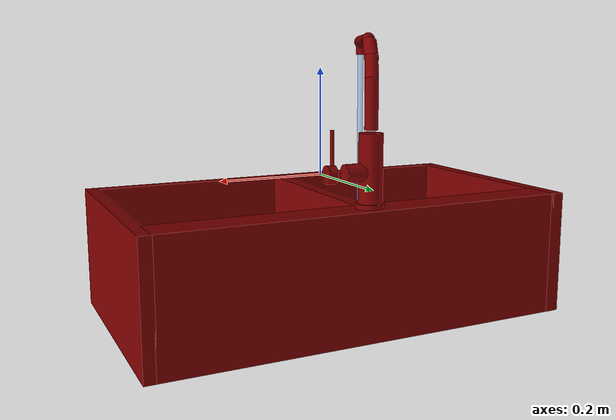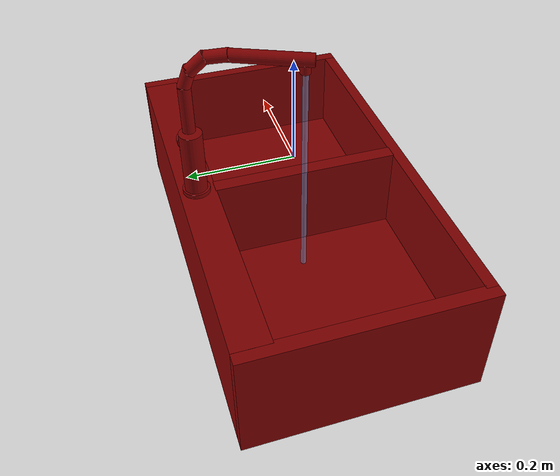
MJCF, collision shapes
<?xml version='1.0' encoding='UTF-8'?>
<mujoco model="model">
  <option timestep="0.002" gravity="0.0 0.0 -9.81"/>
  <compiler angle="radian"/>
  <asset>
    <mesh file="visuals/handle.obj" name="handle_vis"/>
    <mesh file="visuals/Body001.obj" name="Body001_vis"/>
    <mesh file="visuals/spout.obj" name="spout_vis"/>
    <texture file="visuals/T_BC001.png" name="Body001_material" type="2d"/>
    <material name="Body001_material" rgba="1 1 1 1.0" texture="Body001_material" shininess="0.1" specular="1"/>
    <texture file="visuals/T_BC001.png" name="handle_material" type="2d"/>
    <material name="handle_material" rgba="1 1 1 1.0" texture="handle_material" shininess="0.1" specular="2"/>
    <texture file="visuals/T_BC001.png" name="spout_material" type="2d"/>
    <material name="spout_material" rgba="1 1 1 1.0" texture="spout_material" shininess="0.1" specular="2"/>
  </asset>
  <default>
    <default class="visual">
      <geom conaffinity="0" contype="0" group="1" type="mesh"/>
    </default>
    <default class="collision">
      <geom group="0" rgba="0.5 0 0 0.5" solimp="0.998 0.998 0.001" solref="0.001 2"/>
    </default>
    <default class="spawn">
      <geom group="0" rgba="1 1 1 0.5" contype="0" conaffinity="0"/>
      <site group="0" rgba="1 1 1 0.5"/>
    </default>
    <default class="region">
      <geom group="1" conaffinity="0" contype="0" rgba="0 1 0 0"/>
    </default>
  </default>
  <worldbody>
    <body>
      <body name="object">
        <geom mesh="Body001_vis" type="mesh" solimp="0.998 0.998 0.001" solref="0.001 1" friction="0.95 0.3 0.1" class="visual" material="Body001_material"/>
        <geom class="collision" type="box" pos="-0.38680545 -0.00000005 -0.14681930" size="0.013351384550333023 0.2195151299238205 0.11469420790672302" quat="1.0 0.0 0.0 0.0"/>
        <geom class="collision" type="box" pos="0.38909247 0.00004033 -0.14680538" size="0.011063648387789726 0.21947473287582397 0.11468028277158737" quat="1.0 0.0 0.0 0.0"/>
        <geom class="collision" type="box" pos="0.00054166 -0.20857762 -0.14605840" size="0.3795216679573059 0.010937578044831753 0.11393329501152039" quat="1.0 0.0 0.0 0.0"/>
        <geom class="collision" type="box" pos="0.00054166 0.18599495 -0.14671559" size="0.3795216679573059 0.033520132303237915 0.11469586193561554" quat="1.0 0.0 0.0 0.0"/>
        <geom class="collision" type="box" pos="-0.00059625 -0.02230611 -0.14547301" size="0.01353565976023674 0.17649586498737335 0.1142890602350235" quat="1.0 0.0 0.0 0.0"/>
        <geom class="collision" type="box" pos="-0.19621837 -0.02230611 -0.22904832" size="0.18248188495635986 0.17649586498737335 0.031410619616508484" quat="1.0 0.0 0.0 0.0"/>
        <geom class="collision" type="box" pos="0.19532824 -0.02230611 -0.22939133" size="0.18313905596733093 0.17649586498737335 0.03231377154588699" quat="1.0 0.0 0.0 0.0"/>
        <geom class="collision" type="cylinder" pos="-0.00225388 0.18713000 0.03506240" size="0.02084951102733612 0.060565002262592316" quat="1.0 0.0 0.0 0.0"/>
        <geom class="collision" type="cylinder" pos="-0.00201509 0.18689154 -0.02721003" size="0.02525591477751732 0.00408189045265317" quat="1.0 0.0 0.0 0.0"/>
        <geom class="collision" type="cylinder" pos="0.02818751 0.18738802 0.03012674" size="0.015646332874894142 0.019175328314304352" quat="0.7071068286895752 -0.0 0.7071067690849304 0.0"/>
        <body name="handle">
          <joint axis="1.0 0.0 0.0" pos="0.06968138 0.18741855 0.03066257" limited="true" name="handle_temp_joint" type="hinge" range="-0.7853981633974483 0.7853981633974483" damping="0.5" frictionloss="1" armature="2"/>
          <joint axis="0.0 1.0 0.0" pos="0.06968138 0.18741855 0.03066257" limited="true" name="handle_joint" type="hinge" range="0 0.5" damping="0.5" frictionloss="1" armature="2"/>
          <geom mesh="handle_vis" type="mesh" solimp="0.998 0.998 0.001" solref="0.001 1" friction="0.95 0.3 0.1" class="visual" material="handle_material"/>
          <geom class="collision" type="cylinder" pos="0.07344403 0.18738802 0.03012674" size="0.015646332874894142 0.007456898223608732" quat="0.7071068286895752 -0.0 0.7071067690849304 0.0"/>
          <geom name="handle_main" class="collision" type="cylinder" pos="0.07032917 0.18725046 0.07360532" size="0.003538890741765499 0.02964147925376892" quat="7.549790126404332e-08 0.0 1.0 0.0"/>
        </body>
        <body name="spout">
          <joint axis="0.0 0.0 1.0" pos="-0.00196393 0.18813546 0.17508620" limited="true" name="spout_joint" range="-0.5235987755982988 1.5707963267948966" type="hinge" damping="10"/>
          <site type="cylinder" rgba="0.5 0.75 1 0.5" size="0.005098273511976004 0.22427064180374146" pos="-0.08104806 0.00656461 0.00922041" name="water"/>
          <geom mesh="spout_vis" type="mesh" solimp="0.998 0.998 0.001" solref="0.001 1" friction="0.95 0.3 0.1" class="visual" material="spout_material"/>
          <geom class="collision" type="cylinder" pos="-0.00192987 0.18840389 0.14474963" size="0.011443710885941982 0.04392549258470535" quat="1.0 0.0 0.0 0.0"/>
          <geom class="collision" type="cylinder" pos="-0.00428795 0.18275264 0.20397591" size="0.011443709954619408 0.020029915496706963" quat="0.9840264320373535 0.1626436710357666 -0.06819719076156616 -0.024252736940979958"/>
          <geom class="collision" type="cylinder" pos="-0.01254344 0.16485700 0.23091529" size="0.011834868229925632 0.020714567974209785" quat="0.8972313404083252 0.38146403431892395 -0.05726788192987442 -0.21489889919757843"/>
          <geom class="collision" type="cylinder" pos="-0.02623833 0.13427152 0.24646887" size="0.011443709023296833 0.020029917359352112" quat="0.7550481557846069 0.6142236590385437 -0.14477390050888062 -0.17796654999256134"/>
          <geom class="collision" type="cylinder" pos="-0.06014432 0.05641563 0.24821715" size="0.011443709954619408 0.06917614489793777" quat="0.6892174482345581 0.6950477957725525 -0.144886314868927 -0.14455394446849823" name="spout_main"/>
          <geom class="collision" type="cylinder" pos="-0.08118154 0.00717940 0.23222953" size="0.008876348845660686 0.008142790757119656" quat="1.0 0.0 0.0 0.0"/>
        </body>
        <geom class="region" name="reg_basin_left" type="box" pos="-0.19452467 -0.022255129999999998 -0.112075365" size="0.17625912 0.17038829 0.080182565"/>
        <geom class="region" name="reg_basin_right" type="box" pos="0.19502985 -0.021742335 -0.112067425" size="0.17518625999999998 0.171649835 0.080190505"/>
        <geom class="region" name="reg_main" type="box" pos="-3.500000000100645e-07 -5.999999999617422e-08 -0.145598385" size="0.40115647 0.22051513 0.114473285"/>
      </body>
    </body>
  </worldbody>
  <actuator>
    <motor name="handle_joint_actuator" joint="handle_joint" gear="10"/>
    <motor name="handle_temp_joint_actuator" joint="handle_temp_joint" gear="10"/>
    <motor name="spout_joint_actuator" joint="spout_joint" gear="10"/>
  </actuator>
</mujoco>
